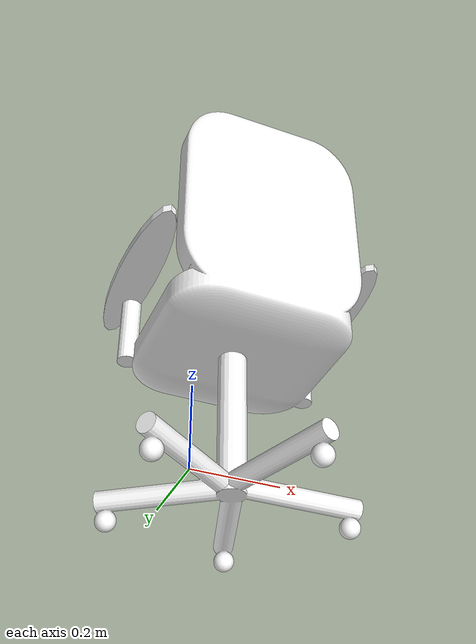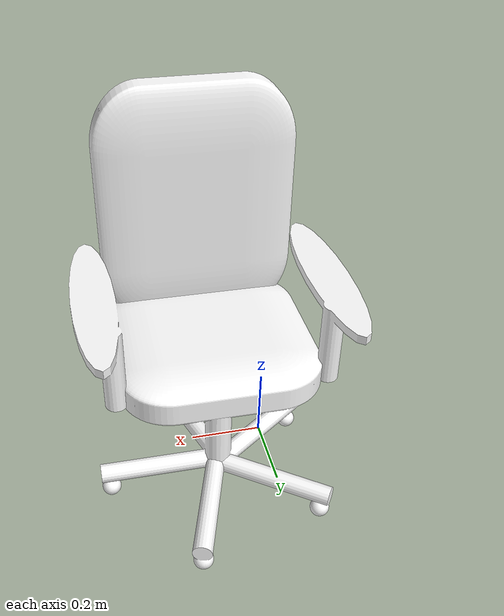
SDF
<?xml version="1.0" ?>
<sdf version="1.6">
  <model name="boss_arm_chair">
    <static>true</static>
    <link name="link">

      <collision name="colision1">
        <pose>0 0 0 0 0 0</pose>
        <geometry>
          <mesh>
            <uri>/home/marat/exchange_project_ws/src/collab_industrial_research/gz_world_package/models/boss_arm_chair/meshes/boss_arm_chair.stl</uri>
	    <scale> 0.01 0.01 0.01 </scale>
          </mesh>
        </geometry>
      </collision>

      <visual name="visual1">
        <pose>0 0 0 0 0 0</pose>
        <geometry>
          <mesh>
            <uri>/home/marat/exchange_project_ws/src/collab_industrial_research/gz_world_package/models/boss_arm_chair/meshes/boss_arm_chair.stl</uri>
	    <scale> 0.01 0.01 0.01 </scale>
          </mesh>
        </geometry>
        <material>
            <diffuse>1 1 1 1</diffuse>
            <pbr>
            <metal>
                <albedo_map>/home/marat/exchange_project_ws/src/collab_industrial_research/gz_world_package/models/boss_arm_chair/materials/textures/test.png</albedo_map>
                <roughness>0.7</roughness>
                <metalness>0.3</metalness>
            </metal>
            </pbr>
        </material>
      </visual>
    </link>
  </model>
</sdf>

        <material>
            <ambient>1 1 1 1</ambient>
            <diffuse>1 1 1 1</diffuse>
            <pbr>
            <metal>
                <albedo_map>/home/marat/exchange_project_ws/src/collab_industrial_research/gz_world_package/models/table/materials/textures/white_table.png</albedo_map>
                <roughness>0.8</roughness>
                <metalness>0.1</metalness>
            </metal>
            </pbr>
        </material>
